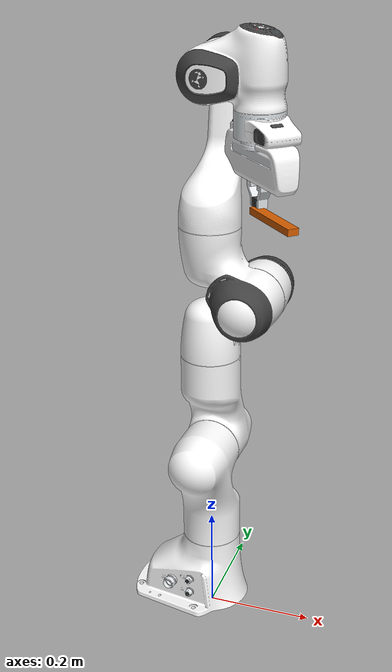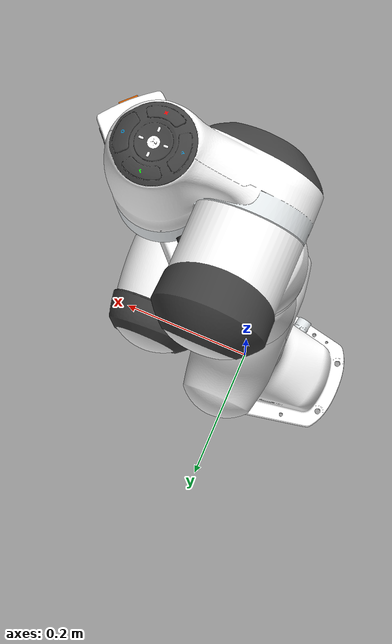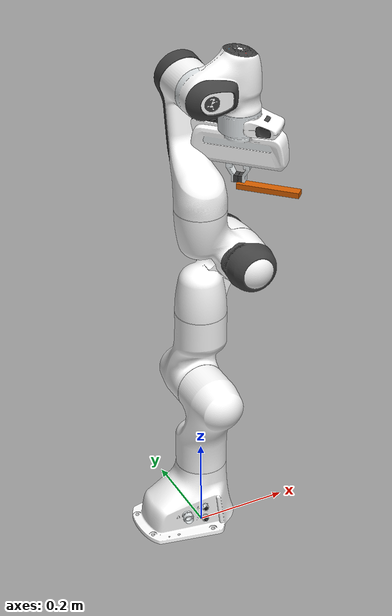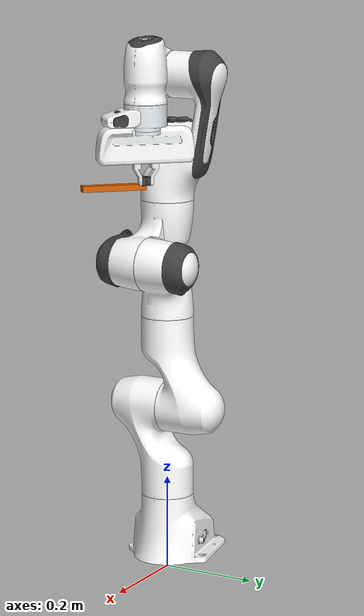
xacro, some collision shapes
<?xml version="1.0"?>
<robot xmlns:xacro="http://www.ros.org/wiki/xacro"  name="robot">

    <xacro:arg name="spawn_manipulator" default="true"/>

    <xacro:arg name="spawn_mobile_robot" default="false"/>

    <xacro:if value="$(arg spawn_mobile_robot)">
        <xacro:if value="$(arg spawn_manipulator)">
            <xacro:include filename="$(find dogtooth_description)/urdf/dogtooth_001.urdf.xacro"/>

            <xacro:include filename="$(find franka)/description/manipulator.urdf.xacro" />
            <xacro:manipulator connected_base="base_link"/>

            <xacro:include filename="$(find franka)/description/manipulator.gazebo.xacro" />
            <xacro:include filename="$(find franka)/description/mobile_manipulator.control.xacro" />
        </xacro:if>
        <xacro:unless value="$(arg spawn_manipulator)">

            <xacro:include filename="$(find dogtooth_description)/urdf/dogtooth_001.urdf.xacro"/>

        </xacro:unless>
    </xacro:if>

    <xacro:unless value="$(arg spawn_mobile_robot)">

        <xacro:if value="$(arg spawn_manipulator)">

            <xacro:include filename="$(find franka)/description/manipulator.urdf.xacro" />
            <xacro:manipulator connected_base="world"/>

            <xacro:include filename="$(find franka)/description/manipulator.gazebo.xacro" />
            <xacro:include filename="$(find franka)/description/manipulator.control.xacro" />

        </xacro:if>
    </xacro:unless>

</robot>

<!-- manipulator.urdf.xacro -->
<robot xmlns:xacro="http://www.ros.org/wiki/xacro" name="panda">
  <xacro:macro name="manipulator" params="connected_base:=''">
    <!-- Empty link to refer everything to -->
    <xacro:unless value="${connected_base == 'base_link'}">
       <link name="${connected_base}" />
    </xacro:unless>
    <!-- Include arm and hand xacro files-->
    <xacro:include filename="$(find franka)/description/panda_arm.xacro" />
    <xacro:include filename="$(find franka)/description/panda_hand_gripper.xacro" />
    <xacro:include filename="$(find franka)/description/rgbd_camera.xacro" />

    <!-- call the arm macro-->
    <xacro:panda_arm xyz="0 0 0" rpy="0 0 0" connected_base="${connected_base}"/>
    <!-- call the hand macro-->
    <xacro:panda_hand_gripper ns="panda" rpy="0 0 ${-pi/4}" connected_to="panda_link8" />
    <xacro:rgbd_camera rpy="0 ${-pi/2} 0" connected_to="panda_hand" />

  </xacro:macro>
</robot>

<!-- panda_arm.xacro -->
<robot xmlns:xacro="http://www.ros.org/wiki/xacro" name="panda_arm">

  <!--Correct
  masses-->
  <xacro:property name="mass_link0" value="3.06357" />
  <xacro:property name="mass_link1" value="2.34471" />
  <xacro:property name="mass_link2" value="2.36414" />
  <xacro:property name="mass_link3" value="2.38050" />
  <xacro:property name="mass_link4" value="2.42754" />
  <xacro:property name="mass_link5" value="3.49611" />
  <xacro:property name="mass_link6" value="1.46736" />
  <xacro:property name="mass_link7" value="0.45606" />
  <xacro:property name="mass_link8" value="0.001" />

  <!-- Wrong masses to test adaptability of the algorithms, on purpose off by 20% -->

  <xacro:property name="link0_cog" value="-0.029190 -0.000879 0.056603" />
  <xacro:property name="link1_cog" value="0.000011 -0.031266 -0.069373" />
  <xacro:property name="link2_cog" value="-0.000013 -0.070322 0.031178" />
  <xacro:property name="link3_cog" value="0.044348 0.024928 -0.038130" />
  <xacro:property name="link4_cog" value="-0.038550 0.039526 0.024716" />
  <xacro:property name="link5_cog" value="-0.000064 0.038412 -0.109970" />
  <xacro:property name="link6_cog" value="0.051002 0.006933 0.006169" />
  <xacro:property name="link7_cog" value="0.010361 0.010360 0.079108" />

  <xacro:macro name="cylinder_inertial" params="radius length mass *origin">
    <inertial>
      <mass value="${mass}" />
      <xacro:insert_block name="origin" />
      <inertia ixx="${0.0833333 * mass * (3 * radius * radius + length * length)}" ixy="0.0"
        ixz="0.0"
        iyy="${0.0833333 * mass * (3 * radius * radius + length * length)}" iyz="0.0"
        izz="${0.5 * mass * radius * radius}" />
    </inertial>
  </xacro:macro>

  <xacro:macro name="panda_arm"
    params="arm_id:='panda' description_pkg:='franka' connected_base:='' connected_to:='' xyz:='0 0 0' rpy:='0 0 0'">
    <xacro:unless value="${not connected_to}">
      <joint name="${arm_id}_joint_${connected_to}" type="fixed">
        <parent link="${connected_to}" />
        <child link="${arm_id}_link0" />
        <origin rpy="${rpy}" xyz="${xyz}" />
      </joint>
    </xacro:unless>

    <xacro:property
      name="joint_damping" value="1.0" />

    <xacro:if value="${connected_base == 'base_link'}">
      <joint name="robot_to_world" type="fixed">
        <parent link="${connected_base}" />
        <child link="${arm_id}_link0" />
        <origin xyz="0.0 0.0 0.49" rpy="0.0 0.0 0.0" />
        <dynamics damping="${joint_damping}" />
      </joint>
    </xacro:if>
    <xacro:if value="${not connected_base == 'base_link'}">
      <joint name="robot_to_world" type="fixed">
        <parent link="world" />
        <child link="${arm_id}_link0" />
        <origin xyz="0.0 0.0 0.025" rpy="0.0 0.0 0.0" />
        <dynamics damping="${joint_damping}" />
      </joint>
    </xacro:if>

    <link name="${arm_id}_link0">
      <visual>
        <geometry>
          <mesh filename="file://$(find franka)/meshes/visual/link0.dae" />
        </geometry>
      </visual>
      <collision>
        <geometry>
          <mesh filename="file://$(find franka)/meshes/collision/link0.stl" />
        </geometry>
      </collision>
      <inertial>
        <origin xyz="${link0_cog}" rpy="0 0 0" />
        <mass value="${mass_link0}" />
        <inertia ixx="0.009" iyy="0.0122" izz="0.0122" ixy="0.0" ixz="-0.00010" iyz="0.0" />
      </inertial>
    </link>
    <link name="${arm_id}_link1">
      <visual>
        <geometry>
          <mesh filename="file://$(find franka)/meshes/visual/link1.dae" />
        </geometry>
      </visual>
      <collision>
        <geometry>
          <mesh filename="file://$(find franka)/meshes/collision/link1.stl" />
        </geometry>
      </collision>
      <inertial>
        <origin xyz="${link1_cog}" rpy="0 0 0" />
        <mass value="${mass_link1}" />
        <inertia ixx="0.01418" iyy="0.01181" izz="0.005515" ixy="0.0" ixz="0.0" iyz="0.00236" />
      </inertial>
    </link>
    <joint
      name="${arm_id}_joint1" type="revolute">
      <safety_controller k_position="100.0" k_velocity="40.0" soft_lower_limit="-2.8973"
        soft_upper_limit="2.8973" />
      <origin rpy="0 0 0" xyz="0 0 0.333" />
      <parent link="${arm_id}_link0" />
      <child link="${arm_id}_link1" />
      <axis xyz="0 0 1" />
      <limit effort="87" lower="${-pi}" upper="${pi}" velocity="2.1750" />
      <dynamics damping="${joint_damping}" />
    </joint>
    <link name="${arm_id}_link2">
      <visual>
        <geometry>
          <mesh filename="file://$(find franka)/meshes/visual/link2.dae" />
        </geometry>
      </visual>
      <collision>
        <geometry>
          <mesh filename="file://$(find franka)/meshes/collision/link2.stl" />
        </geometry>
      </collision>
      <inertial>
        <origin xyz="${link2_cog}" rpy="0 0 0" />
        <mass value="${mass_link2}" />
        <inertia ixx="0.014" ixy="0.0" ixz="0.0" iyy="0.0055" iyz="-0.0023" izz="0.01259" />
      </inertial>
    </link>
    <joint
      name="${arm_id}_joint2" type="revolute">
      <safety_controller k_position="100.0" k_velocity="40.0" soft_lower_limit="-1.7628"
        soft_upper_limit="1.7628" />
      <origin rpy="${-pi/2} 0 0" xyz="0 0 0" />
      <parent link="${arm_id}_link1" />
      <child link="${arm_id}_link2" />
      <axis xyz="0 0 1" />
      <limit effort="87" lower="${-pi}" upper="${pi}" velocity="2.1750" />
      <dynamics damping="${joint_damping}" />
    </joint>
    <link name="${arm_id}_link3">
      <visual>
        <geometry>
          <mesh filename="file://$(find franka)/meshes/visual/link3.dae" />
        </geometry>
      </visual>
      <collision>
        <geometry>
          <mesh filename="file://$(find franka)/meshes/collision/link3.stl" />
        </geometry>
      </collision>
      <inertial>
        <origin xyz="${link3_cog}" rpy="0 0 0" />
        <mass value="${mass_link3}" />
        <inertia ixx="0.00716" ixy="-0.00102" ixz="-0.02040" iyy="0.00920" iyz="-0.00102"
          izz="0.007159" />
      </inertial>
    </link>
    <joint name="${arm_id}_joint3"
      type="revolute">
      <safety_controller k_position="100.0" k_velocity="40.0" soft_lower_limit="-2.8973"
        soft_upper_limit="2.8973" />
      <origin rpy="${pi/2} 0 0" xyz="0 -0.316 0" />
      <parent link="${arm_id}_link2" />
      <child link="${arm_id}_link3" />
      <axis xyz="0 0 1" />
      <limit effort="87" lower="${-pi}" upper="${pi}" velocity="2.1750" />
      <dynamics damping="${joint_damping}" />
    </joint>
    <link name="${arm_id}_link4">
      <visual>
        <geometry>
          <mesh filename="file://$(find franka)/meshes/visual/link4.dae" />
        </geometry>
      </visual>
      <collision>
        <geometry>
          <mesh filename="file://$(find franka)/meshes/collision/link4.stl" />
        </geometry>
      </collision>
      <inertial>
        <origin xyz="${link4_cog}" rpy="0 0 0" />
        <mass value="${mass_link4}" />
        <inertia ixx="0.008164" ixy="0.003061" ixz="0.00102" iyy="0.008165" iyz="0.00102"
          izz="0.009185" />
      </inertial>
    </link>
    <joint name="${arm_id}_joint4"
      type="revolute">
      <safety_controller k_position="100.0" k_velocity="40.0" soft_lower_limit="-3.0718"
        soft_upper_limit="-0.0698" />
      <origin rpy="${pi/2} 0 0" xyz="0.0825 0 0" />
      <parent link="${arm_id}_link3" />
      <child link="${arm_id}_link4" />
      <axis xyz="0 0 1" />
      <limit effort="87" lower="${-pi}" upper="${pi}" velocity="2.1750" />
      <dynamics damping="${joint_damping}" />
    </joint>
    <link name="${arm_id}_link5">
      <visual>
        <geometry>
          <mesh filename="file://$(find franka)/meshes/visual/link5.dae" />
        </geometry>
      </visual>
      <collision>
        <geometry>
          <mesh filename="file://$(find franka)/meshes/collision/link5.stl" />
        </geometry>
      </collision>
      <inertial>
        <origin xyz="${link5_cog}" rpy="0 0 0" />
        <mass value="${mass_link5}" />
        <inertia ixx="0.0307" ixy="0.0" ixz="0.0" iyy="0.02761" iyz="-0.0613" izz="0.00818" />
      </inertial>
    </link>
    <joint
      name="${arm_id}_joint5" type="revolute">
      <safety_controller k_position="100.0" k_velocity="40.0" soft_lower_limit="-2.8973"
        soft_upper_limit="2.8973" />
      <origin rpy="${-pi/2} 0 0" xyz="-0.0825 0.384 0" />
      <parent link="${arm_id}_link4" />
      <child link="${arm_id}_link5" />
      <axis xyz="0 0 1" />
      <limit effort="87" lower="${-pi}" upper="${pi}" velocity="2.1750" />
      <dynamics damping="${joint_damping}" />
    </joint>
    <link name="${arm_id}_link6">
      <visual>
        <geometry>
          <mesh filename="file://$(find franka)/meshes/visual/link6.dae" />
        </geometry>
      </visual>
      <collision>
        <geometry>
          <mesh filename="file://$(find franka)/meshes/collision/link6.stl" />
        </geometry>
      </collision>
      <inertial>
        <origin xyz="${link6_cog}" rpy="0 0 0" />
        <mass value="${mass_link6}" />
        <inertia ixx="0.00205" ixy="0.0" ixz="0.0" iyy="0.004089" iyz="0" izz="0.00490" />
      </inertial>
    </link>
    <joint
      name="${arm_id}_joint6" type="revolute">
      <safety_controller k_position="100.0" k_velocity="40.0" soft_lower_limit="-0.0175"
        soft_upper_limit="3.7525" />
      <origin rpy="${pi/2} 0 0" xyz="0 0 0" />
      <parent link="${arm_id}_link5" />
      <child link="${arm_id}_link6" />
      <axis xyz="0 0 1" />
      <limit effort="87" lower="${-pi}" upper="${pi}" velocity="2.1750" />
      <dynamics damping="${joint_damping}" />
    </joint>
    <link name="${arm_id}_link7">
      <visual>
        <geometry>
          <mesh filename="file://$(find franka)/meshes/visual/link7.dae" />
        </geometry>
      </visual>
      <collision>
        <geometry>
          <mesh filename="file://$(find franka)/meshes/collision/link7.stl" />
        </geometry>
      </collision>
      <inertial>
        <origin xyz="0 0 0" rpy="0 0 0" />
        <mass value="${mass_link7}" />
        <inertia ixx="0.3" ixy="0.0" ixz="0.0" iyy="0.3" iyz="0.0" izz="0.3" />
      </inertial>
    </link>
    <joint
      name="${arm_id}_joint7" type="revolute">
      <safety_controller k_position="100.0" k_velocity="40.0" soft_lower_limit="-2.8973"
        soft_upper_limit="2.8973" />
      <origin rpy="${pi/2} 0 0" xyz="0.088 0 0" />
      <parent link="${arm_id}_link6" />
      <child link="${arm_id}_link7" />
      <axis xyz="0 0 1" />
      <limit effort="12" lower="-2.8973" upper="2.8973" velocity="2.6100" />
      <dynamics damping="${joint_damping}" />
    </joint>
    <link name="${arm_id}_link8">
      <inertial>
        <origin xyz="0 0 0" rpy="0 0 0" />
        <mass value="${mass_link8}" />
        <inertia ixx="0.3" ixy="0.0" ixz="0.0" iyy="0.3" iyz="0.0" izz="0.3" />
      </inertial>
    </link>
    <joint
      name="${arm_id}_joint8" type="fixed">
      <origin rpy="0 0 0" xyz="0 0 0.107" />
      <parent link="${arm_id}_link7" />
      <child link="${arm_id}_link8" />
    </joint>

  </xacro:macro>

</robot>

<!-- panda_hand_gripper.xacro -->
<robot xmlns:xacro="http://www.ros.org/wiki/xacro" name="panda_hand_gripper">

    <xacro:macro name="panda_hand_gripper" params="connected_to:='' ns:='' rpy:='0 0 0' xyz:='0 0 0' ">
        <xacro:unless value="${connected_to == ''}">
            <joint name="${ns}_hand_joint" type="fixed">
                <parent link="${connected_to}" />
                <child link="${ns}_hand" />
                <origin xyz="${xyz}" rpy="${rpy}" />
            </joint>
        </xacro:unless>

        <link name="${ns}_hand">
            <visual>
                <geometry>
                    <mesh filename="file://$(find franka)/meshes/visual/hand.dae" />
                </geometry>
            </visual>
            <collision>
                <geometry>
                    <mesh filename="file://$(find franka)/meshes/collision/hand.stl" />
                </geometry>
            </collision>
            <inertial>
                <origin xyz="0 0 0" rpy="0 0 0" />
                <mass value="0.68" />
                <inertia ixx="0.1" ixy="0.0" ixz="0.0" iyy="0.1" iyz="0.0" izz="0.1" />
            </inertial>
        </link>

        <link name="${ns}_rightfinger">
            <visual>
                <origin rpy="0 0 3.141592653589793" xyz="0 0 0"/>
                <geometry>
                    <mesh filename="file://$(find franka)/meshes/visual/finger.dae" />
                </geometry>
            </visual>
            <collision>
                <origin rpy="0 0 3.141592653589793" xyz="0 0 0"/>
                <geometry>
                    <mesh filename="file://$(find franka)/meshes/collision/finger.stl" />
                </geometry>
            </collision>
            <inertial>
      		<origin rpy="0 0 3.141592653589793" xyz="-6.2561e-06 0.00227781 -0.0277116"/>
      		<mass value="0.2238453537819424"/>
      		<inertia ixx="6.74804167363695e-05" ixy="-4.1027443646025676e-09" ixz="1.8693673970152995e-08" iyy="6.627189221641395e-05" iyz="1.1967548474390802e-05" izz="1.550396267804825e-05"/>
    	    </inertial>
        </link>

        <link name="${ns}_leftfinger">
	    <visual>
	      <origin rpy="0 0 0" xyz="0 0 0"/>
	      <geometry>
		<mesh filename="file://$(find franka)/meshes/visual/finger.dae"/>
	      </geometry>
	    </visual>
	    <collision>
	      <origin rpy="0 0 0" xyz="0 0 0"/>
	      <geometry>
		<mesh filename="file://$(find franka)/meshes/collision/finger.stl"/>
	      </geometry>
	    </collision>
	    <inertial>
	      <origin rpy="0 0 0" xyz="-6.2561e-06 0.00227781 -0.0277116"/>
	      <mass value="0.2238453537819424"/>
	      <inertia ixx="6.74804167363695e-05" ixy="-4.1027443646025676e-09" ixz="1.8693673970152995e-08" iyy="6.627189221641395e-05" iyz="1.1967548474390802e-05" izz="1.550396267804825e-05"/>
	    </inertial>
	  </link>

        <joint name="${ns}_finger_joint1" type="prismatic">
            <parent link="${ns}_hand" />
            <child link="${ns}_leftfinger" />
            <origin xyz="0 0 0.0584" rpy="0 0 0" />
            <axis xyz="0 1 0"/>
	    <limit effort="20" lower="0" upper="0.04" velocity="0.2"/>
	    <dynamics damping="3.0" friction="0.4"/>
        </joint>

        <joint name="${ns}_finger_joint2" type="prismatic">
            <parent link="${ns}_hand" />
            <child link="${ns}_rightfinger" />
            <origin xyz="0 0 0.0584" rpy="0 0 0" />
            <axis xyz="0 -1 0"/>
	    <limit effort="20" lower="0" upper="0.04" velocity="0.2"/>
	    <dynamics damping="3.0" friction="0.4"/>
        </joint>

    </xacro:macro>
</robot>

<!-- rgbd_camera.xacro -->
<robot xmlns:xacro="http://www.ros.org/wiki/xacro" name="rgbd_camera">

    <xacro:macro name="rgbd_camera" params="connected_to:='' rpy:='0 -1.57 0' xyz:='0 0 0.112' ">
        <xacro:unless value="${connected_to == ''}">
            <joint name="tip_camera_joint" type="fixed">
                <parent link="${connected_to}" />
                <child link="tip_camera" />
                <origin xyz="${xyz}" rpy="${rpy}" />
            </joint>
        </xacro:unless>

    <link name="tip_camera">
        <visual>
            <origin xyz="0 0 0" rpy="1.57 0 1.57"/>
            <geometry>
                <mesh filename="file://$(find franka)/meshes/r200.dae" />
            </geometry>
        </visual>
        <collision>
            <origin xyz="0.003 0.065 0.007" rpy="0 0 0"/>
            <geometry>
                <box size="0.012 0.132 0.020"/>
            </geometry>
        </collision>
    </link>

    <joint name="tip_camera_depth_joint" type="fixed">
        <origin xyz="0.005 0.028 0.013" rpy="-1.57 0 -1.57"/>
        <parent link="tip_camera"/>
        <child link="tip_camera_depth_frame"/>
    </joint>

    <link name="tip_camera_depth_frame"/>

    <joint name="tip_camera_depth_optical_joint" type="fixed">
        <origin xyz="0 0 0" rpy="-1.57 0 -1.57"/>
        <parent link="tip_camera_depth_frame"/>
        <child link="tip_camera_depth_optical_frame"/>
    </joint>
    <link name="tip_camera_depth_optical_frame"/>

    <joint name="tip_camera_rgb_joint" type="fixed">
        <origin xyz="0.005 0.018 0.013" rpy="-1.57 0 -1.57"/>
        <parent link="tip_camera"/>
        <child link="tip_camera_rgb_frame"/>
    </joint>
    <link name="tip_camera_rgb_frame"/>

    <joint name="tip_camera_rgb_optical_joint" type="fixed">
        <origin xyz="0 0 0" rpy="-1.57 0 -1.57"/>
        <parent link="tip_camera_rgb_frame"/>
        <child link="tip_camera_rgb_optical_frame"/>
    </joint>
    <link name="tip_camera_rgb_optical_frame"/>

    <gazebo reference="tip_camera">
      <sensor name="tip_camera" type="depth">
        <always_on>1</always_on>
        <update_rate>1</update_rate>
        <camera name="tip_camera">
        </camera>
	    <plugin name="tip_camera_depth_driver" filename="libgazebo_ros_camera.so">
            <ros>
            </ros>
            <camera_name>tip_camera</camera_name>
            <frame_name>tip_camera_depth_frame</frame_name>
            <hack_baseline>0.07</hack_baseline>
            <min_depth>0.4</min_depth>
            <max_depth>8</max_depth>
        </plugin>
      </sensor>

      <sensor name="tip_camera_rgb" type="camera">
        <always_on>true</always_on>
        <visualize>true</visualize>
        <update_rate>30</update_rate>
        <camera name="tip_rgb_camera">
          <horizontal_fov>1.02974</horizontal_fov>
          <image>
            <width>1920</width>
            <height>1080</height>
            <format>R8G8B8</format>
          </image>
          <clip>
            <near>0.02</near>
            <far>300</far>
          </clip>
          <noise>
            <type>gaussian</type>
            <mean>0.0</mean>
            <stddev>0.007</stddev>
          </noise>
        </camera>
          <plugin name="tip_camera_rgb_driver" filename="libgazebo_ros_camera.so">
            <ros>
            </ros>
            <camera_name>tip_camera_rgb</camera_name>
            <frame_name>tip_camera_rgb_frame</frame_name>
            <hack_baseline>0.07</hack_baseline>
          </plugin>
      </sensor>
    </gazebo>
    </xacro:macro>

</robot>
